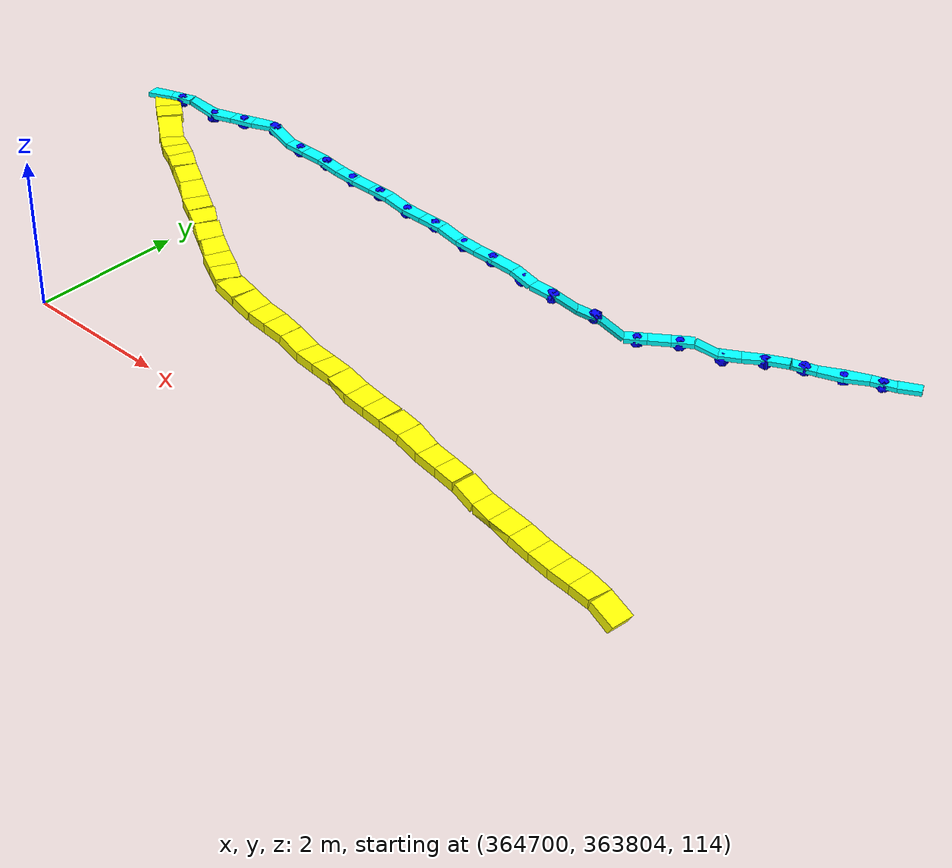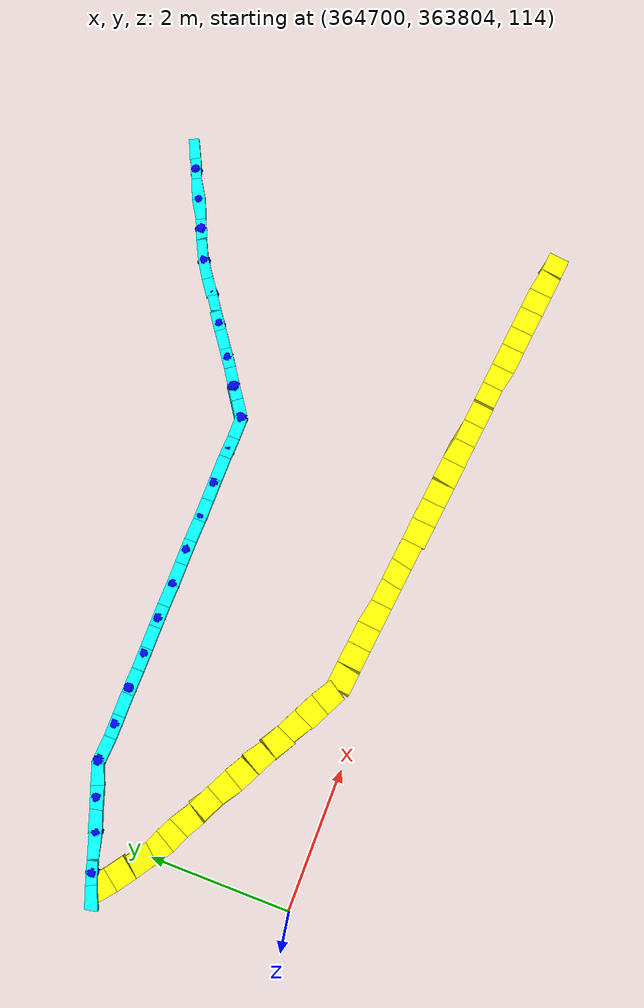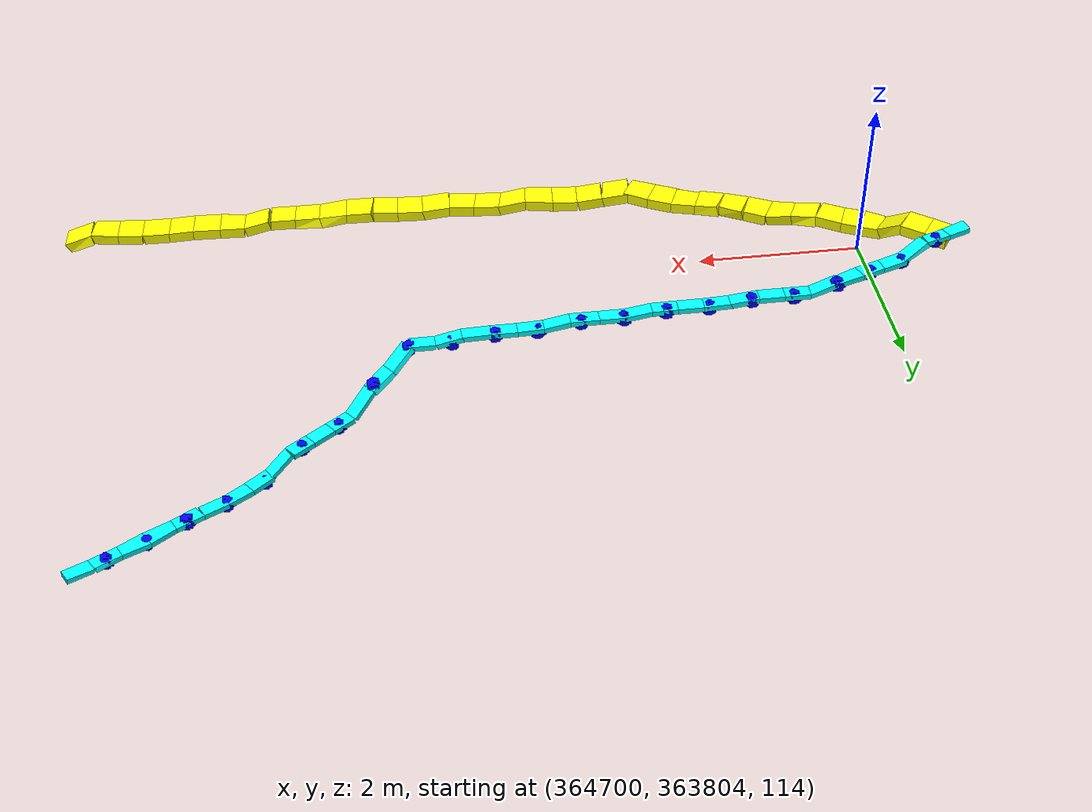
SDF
<sdf version="1.5">
 <world name="default">
  <include><uri>model://sun</uri></include>
  <model name="road_segment_163">
   <static>true</static>
   <pose>364699.94 363806.24 115.87 0 -0.0 -0.6747409422590451</pose>
   <link name="link">
    <collision name="collision">
     <geometry><box><size>0.2561249694449526 0.3 0.12</size></box></geometry>
     <surface><friction><ode><mu>0.02</mu><mu2>0.02</mu2></ode></friction></surface>
    </collision>
    <visual name="visual">
     <geometry><box><size>0.2561249694449526 0.3 0.12</size></box></geometry>
     <material><ambient>1 1 0 1</ambient><diffuse>1 1 0 1</diffuse><emissive>1 1 0 1</emissive></material>
    </visual>
   </link>
  </model>
  <model name="road_segment_164">
   <static>true</static>
   <pose>364700.14 363806.08 115.87400000024796 0 -0.031224602607258636 -0.6747409422945376</pose>
   <link name="link">
    <collision name="collision">
     <geometry><box><size>0.25624987809367294 0.3 0.12</size></box></geometry>
     <surface><friction><ode><mu>0.02</mu><mu2>0.02</mu2></ode></friction></surface>
    </collision>
    <visual name="visual">
     <geometry><box><size>0.25624987809367294 0.3 0.12</size></box></geometry>
     <material><ambient>1 1 0 1</ambient><diffuse>1 1 0 1</diffuse><emissive>1 1 0 1</emissive></material>
    </visual>
   </link>
  </model>
  <model name="road_segment_165">
   <static>true</static>
   <pose>364700.33999999997 363805.92000000004 115.7990000006627 0 0.5527434993754079 -0.6747409421170752</pose>
   <link name="link">
    <collision name="collision">
     <geometry><box><size>0.3009385317487049 0.3 0.12</size></box></geometry>
     <surface><friction><ode><mu>0.02</mu><mu2>0.02</mu2></ode></friction></surface>
    </collision>
    <visual name="visual">
     <geometry><box><size>0.3009385317487049 0.3 0.12</size></box></geometry>
     <material><ambient>1 1 0 1</ambient><diffuse>1 1 0 1</diffuse><emissive>1 1 0 1</emissive></material>
    </visual>
   </link>
  </model>
  <model name="road_segment_166">
   <static>true</static>
   <pose>364700.54000000004 363805.79000000004 115.72000000041473 0 3.7094541680606254e-09 -0.4636476091172214</pose>
   <link name="link">
    <collision name="collision">
     <geometry><box><size>0.22360679777601022 0.3 0.12</size></box></geometry>
     <surface><friction><ode><mu>0.02</mu><mu2>0.02</mu2></ode></friction></surface>
    </collision>
    <visual name="visual">
     <geometry><box><size>0.22360679777601022 0.3 0.12</size></box></geometry>
     <material><ambient>1 1 0 1</ambient><diffuse>1 1 0 1</diffuse><emissive>1 1 0 1</emissive></material>
    </visual>
   </link>
  </model>
  <model name="road_segment_167">
   <static>true</static>
   <pose>364700.74 363805.69 115.72 0 -0.0 -0.46364760888439077</pose>
   <link name="link">
    <collision name="collision">
     <geometry><box><size>0.22360679774997896 0.3 0.12</size></box></geometry>
     <surface><friction><ode><mu>0.1</mu><mu2>0.1</mu2></ode></friction></surface>
    </collision>
    <visual name="visual">
     <geometry><box><size>0.22360679774997896 0.3 0.12</size></box></geometry>
     <material><ambient>1 1 0 1</ambient><diffuse>1 1 0 1</diffuse><emissive>1 1 0 1</emissive></material>
    </visual>
   </link>
  </model>
  <model name="road_segment_168">
   <static>true</static>
   <pose>364700.96222222224 363805.57333333336 115.71999999999998 0 5.103673544427894e-14 -0.49934672179691614</pose>
   <link name="link">
    <collision name="collision">
     <geometry><box><size>0.2784436463558132 0.3 0.12</size></box></geometry>
     <surface><friction><ode><mu>0.02</mu><mu2>0.02</mu2></ode></friction></surface>
    </collision>
    <visual name="visual">
     <geometry><box><size>0.2784436463558132 0.3 0.12</size></box></geometry>
     <material><ambient>1 1 0 1</ambient><diffuse>1 1 0 1</diffuse><emissive>1 1 0 1</emissive></material>
    </visual>
   </link>
  </model>
  <model name="road_segment_169">
   <static>true</static>
   <pose>364701.20666666667 363805.44 115.69111111141589 0 0.20459906853487628 -0.49934672161339516</pose>
   <link name="link">
    <collision name="collision">
     <geometry><box><size>0.28437499136684896 0.3 0.12</size></box></geometry>
     <surface><friction><ode><mu>0.02</mu><mu2>0.02</mu2></ode></friction></surface>
    </collision>
    <visual name="visual">
     <geometry><box><size>0.28437499136684896 0.3 0.12</size></box></geometry>
     <material><ambient>1 1 0 1</ambient><diffuse>1 1 0 1</diffuse><emissive>1 1 0 1</emissive></material>
    </visual>
   </link>
  </model>
  <model name="road_segment_170">
   <static>true</static>
   <pose>364701.4511111111 363805.30666666664 115.62611111141591 0 0.25378557963269954 -0.4993467216968138</pose>
   <link name="link">
    <collision name="collision">
     <geometry><box><size>0.2876576327774809 0.3 0.12</size></box></geometry>
     <surface><friction><ode><mu>0.02</mu><mu2>0.02</mu2></ode></friction></surface>
    </collision>
    <visual name="visual">
     <geometry><box><size>0.2876576327774809 0.3 0.12</size></box></geometry>
     <material><ambient>1 1 0 1</ambient><diffuse>1 1 0 1</diffuse><emissive>1 1 0 1</emissive></material>
    </visual>
   </link>
  </model>
  <model name="road_segment_171">
   <static>true</static>
   <pose>364701.6955555556 363805.17333333334 115.59 0 -0.0 -0.49934672161339516</pose>
   <link name="link">
    <collision name="collision">
     <geometry><box><size>0.27844364632794033 0.3 0.12</size></box></geometry>
     <surface><friction><ode><mu>0.02</mu><mu2>0.02</mu2></ode></friction></surface>
    </collision>
    <visual name="visual">
     <geometry><box><size>0.27844364632794033 0.3 0.12</size></box></geometry>
     <material><ambient>1 1 0 1</ambient><diffuse>1 1 0 1</diffuse><emissive>1 1 0 1</emissive></material>
    </visual>
   </link>
  </model>
  <model name="road_segment_172">
   <static>true</static>
   <pose>364701.94 363805.04000000004 115.58166666636352 0 0.059785187089526556 -0.49934672179691614</pose>
   <link name="link">
    <collision name="collision">
     <geometry><box><size>0.2789420047140796 0.3 0.12</size></box></geometry>
     <surface><friction><ode><mu>0.02</mu><mu2>0.02</mu2></ode></friction></surface>
    </collision>
    <visual name="visual">
     <geometry><box><size>0.2789420047140796 0.3 0.12</size></box></geometry>
     <material><ambient>1 1 0 1</ambient><diffuse>1 1 0 1</diffuse><emissive>1 1 0 1</emissive></material>
    </visual>
   </link>
  </model>
  <model name="road_segment_173">
   <static>true</static>
   <pose>364702.1844444444 363804.9066666667 115.54666666651485 0 0.18924868778680745 -0.49934672161339516</pose>
   <link name="link">
    <collision name="collision">
     <geometry><box><size>0.2835053941777532 0.3 0.12</size></box></geometry>
     <surface><friction><ode><mu>0.02</mu><mu2>0.02</mu2></ode></friction></surface>
    </collision>
    <visual name="visual">
     <geometry><box><size>0.2835053941777532 0.3 0.12</size></box></geometry>
     <material><ambient>1 1 0 1</ambient><diffuse>1 1 0 1</diffuse><emissive>1 1 0 1</emissive></material>
    </visual>
   </link>
  </model>
  <model name="road_segment_174">
   <static>true</static>
   <pose>364702.4288888889 363804.7733333333 115.50000000015135 0 0.14267949443683417 -0.4993467216968138</pose>
   <link name="link">
    <collision name="collision">
     <geometry><box><size>0.2813020871742563 0.3 0.12</size></box></geometry>
     <surface><friction><ode><mu>0.02</mu><mu2>0.02</mu2></ode></friction></surface>
    </collision>
    <visual name="visual">
     <geometry><box><size>0.2813020871742563 0.3 0.12</size></box></geometry>
     <material><ambient>1 1 0 1</ambient><diffuse>1 1 0 1</diffuse><emissive>1 1 0 1</emissive></material>
    </visual>
   </link>
  </model>
  <model name="road_segment_175">
   <static>true</static>
   <pose>364702.67333333334 363804.64 115.48 0 -0.0 -0.49934672161339516</pose>
   <link name="link">
    <collision name="collision">
     <geometry><box><size>0.27844364632794033 0.3 0.12</size></box></geometry>
     <surface><friction><ode><mu>0.02</mu><mu2>0.02</mu2></ode></friction></surface>
    </collision>
    <visual name="visual">
     <geometry><box><size>0.27844364632794033 0.3 0.12</size></box></geometry>
     <material><ambient>1 1 0 1</ambient><diffuse>1 1 0 1</diffuse><emissive>1 1 0 1</emissive></material>
    </visual>
   </link>
  </model>
  <model name="road_segment_176">
   <static>true</static>
   <pose>364702.91777777777 363804.5066666667 115.48 0 -0.0 -0.49934672179691614</pose>
   <link name="link">
    <collision name="collision">
     <geometry><box><size>0.2784436463558132 0.3 0.12</size></box></geometry>
     <surface><friction><ode><mu>0.2</mu><mu2>0.2</mu2></ode></friction></surface>
    </collision>
    <visual name="visual">
     <geometry><box><size>0.2784436463558132 0.3 0.12</size></box></geometry>
     <material><ambient>1 1 0 1</ambient><diffuse>1 1 0 1</diffuse><emissive>1 1 0 1</emissive></material>
    </visual>
   </link>
  </model>
  <model name="road_segment_177">
   <static>true</static>
   <pose>364703.18782608694 363804.4226086957 115.45608695678494 0 0.15929551790723767 -0.11710874450974926</pose>
   <link name="link">
    <collision name="collision">
     <geometry><box><size>0.30150849466722524 0.3 0.12</size></box></geometry>
     <surface><friction><ode><mu>0.02</mu><mu2>0.02</mu2></ode></friction></surface>
    </collision>
    <visual name="visual">
     <geometry><box><size>0.30150849466722524 0.3 0.12</size></box></geometry>
     <material><ambient>1 1 0 1</ambient><diffuse>1 1 0 1</diffuse><emissive>1 1 0 1</emissive></material>
    </visual>
   </link>
  </model>
  <model name="road_segment_178">
   <static>true</static>
   <pose>364703.48347826087 363804.38782608695 115.40608695678493 0 0.1734997467044486 -0.11710874470394035</pose>
   <link name="link">
    <collision name="collision">
     <geometry><box><size>0.30222864701169905 0.3 0.12</size></box></geometry>
     <surface><friction><ode><mu>0.02</mu><mu2>0.02</mu2></ode></friction></surface>
    </collision>
    <visual name="visual">
     <geometry><box><size>0.30222864701169905 0.3 0.12</size></box></geometry>
     <material><ambient>1 1 0 1</ambient><diffuse>1 1 0 1</diffuse><emissive>1 1 0 1</emissive></material>
    </visual>
   </link>
  </model>
  <model name="road_segment_179">
   <static>true</static>
   <pose>364703.77913043473 363804.3530434782 115.38000000000001 0 -4.773690233292233e-14 -0.11710874453259527</pose>
   <link name="link">
    <collision name="collision">
     <geometry><box><size>0.297691178537182 0.3 0.12</size></box></geometry>
     <surface><friction><ode><mu>0.02</mu><mu2>0.02</mu2></ode></friction></surface>
    </collision>
    <visual name="visual">
     <geometry><box><size>0.297691178537182 0.3 0.12</size></box></geometry>
     <material><ambient>1 1 0 1</ambient><diffuse>1 1 0 1</diffuse><emissive>1 1 0 1</emissive></material>
    </visual>
   </link>
  </model>
  <model name="road_segment_180">
   <static>true</static>
   <pose>364704.07478260866 363804.3182608696 115.38 0 9.54738046473045e-14 -0.11710874450974926</pose>
   <link name="link">
    <collision name="collision">
     <geometry><box><size>0.297691178594991 0.3 0.12</size></box></geometry>
     <surface><friction><ode><mu>0.02</mu><mu2>0.02</mu2></ode></friction></surface>
    </collision>
    <visual name="visual">
     <geometry><box><size>0.297691178594991 0.3 0.12</size></box></geometry>
     <material><ambient>1 1 0 1</ambient><diffuse>1 1 0 1</diffuse><emissive>1 1 0 1</emissive></material>
    </visual>
   </link>
  </model>
  <model name="road_segment_181">
   <static>true</static>
   <pose>364704.3704347826 363804.28347826086 115.345 0 0.2309474823678924 -0.11710874450974926</pose>
   <link name="link">
    <collision name="collision">
     <geometry><box><size>0.3058104606014482 0.3 0.12</size></box></geometry>
     <surface><friction><ode><mu>0.02</mu><mu2>0.02</mu2></ode></friction></surface>
    </collision>
    <visual name="visual">
     <geometry><box><size>0.3058104606014482 0.3 0.12</size></box></geometry>
     <material><ambient>1 1 0 1</ambient><diffuse>1 1 0 1</diffuse><emissive>1 1 0 1</emissive></material>
    </visual>
   </link>
  </model>
  <model name="road_segment_182">
   <static>true</static>
   <pose>364704.6660869565 363804.2486956522 115.31000000000002 0 4.773690232256166e-14 -0.11710874470394035</pose>
   <link name="link">
    <collision name="collision">
     <geometry><box><size>0.297691178601792 0.3 0.12</size></box></geometry>
     <surface><friction><ode><mu>0.02</mu><mu2>0.02</mu2></ode></friction></surface>
    </collision>
    <visual name="visual">
     <geometry><box><size>0.297691178601792 0.3 0.12</size></box></geometry>
     <material><ambient>1 1 0 1</ambient><diffuse>1 1 0 1</diffuse><emissive>1 1 0 1</emissive></material>
    </visual>
   </link>
  </model>
  <model name="road_segment_183">
   <static>true</static>
   <pose>364704.96173913043 363804.2139130435 115.31 0 -0.0 -0.11710874450974926</pose>
   <link name="link">
    <collision name="collision">
     <geometry><box><size>0.297691178594991 0.3 0.12</size></box></geometry>
     <surface><friction><ode><mu>0.02</mu><mu2>0.02</mu2></ode></friction></surface>
    </collision>
    <visual name="visual">
     <geometry><box><size>0.297691178594991 0.3 0.12</size></box></geometry>
     <material><ambient>1 1 0 1</ambient><diffuse>1 1 0 1</diffuse><emissive>1 1 0 1</emissive></material>
    </visual>
   </link>
  </model>
  <model name="road_segment_184">
   <static>true</static>
   <pose>364705.25739130436 363804.17913043476 115.28521739147631 0 0.16498532049320544 -0.11710874450974926</pose>
   <link name="link">
    <collision name="collision">
     <geometry><box><size>0.30178924525938305 0.3 0.12</size></box></geometry>
     <surface><friction><ode><mu>0.02</mu><mu2>0.02</mu2></ode></friction></surface>
    </collision>
    <visual name="visual">
     <geometry><box><size>0.30178924525938305 0.3 0.12</size></box></geometry>
     <material><ambient>1 1 0 1</ambient><diffuse>1 1 0 1</diffuse><emissive>1 1 0 1</emissive></material>
    </visual>
   </link>
  </model>
  <model name="road_segment_185">
   <static>true</static>
   <pose>364705.5530434783 363804.14434782614 115.25521739147632 0 0.03503803008240777 -0.11710874453259527</pose>
   <link name="link">
    <collision name="collision">
     <geometry><box><size>0.29787400436111333 0.3 0.12</size></box></geometry>
     <surface><friction><ode><mu>0.02</mu><mu2>0.02</mu2></ode></friction></surface>
    </collision>
    <visual name="visual">
     <geometry><box><size>0.29787400436111333 0.3 0.12</size></box></geometry>
     <material><ambient>1 1 0 1</ambient><diffuse>1 1 0 1</diffuse><emissive>1 1 0 1</emissive></material>
    </visual>
   </link>
  </model>
  <model name="road_segment_186">
   <static>true</static>
   <pose>364705.84869565215 363804.1095652174 115.25000000000001 0 -0.0 -0.11710874470394035</pose>
   <link name="link">
    <collision name="collision">
     <geometry><box><size>0.297691178601792 0.3 0.12</size></box></geometry>
     <surface><friction><ode><mu>0.02</mu><mu2>0.02</mu2></ode></friction></surface>
    </collision>
    <visual name="visual">
     <geometry><box><size>0.297691178601792 0.3 0.12</size></box></geometry>
     <material><ambient>1 1 0 1</ambient><diffuse>1 1 0 1</diffuse><emissive>1 1 0 1</emissive></material>
    </visual>
   </link>
  </model>
  <model name="road_segment_187">
   <static>true</static>
   <pose>364706.1443478261 363804.07478260866 115.24086956543087 0 0.061264888014374914 -0.11710874450974926</pose>
   <link name="link">
    <collision name="collision">
     <geometry><box><size>0.29825072867465136 0.3 0.12</size></box></geometry>
     <surface><friction><ode><mu>0.02</mu><mu2>0.02</mu2></ode></friction></surface>
    </collision>
    <visual name="visual">
     <geometry><box><size>0.29825072867465136 0.3 0.12</size></box></geometry>
     <material><ambient>1 1 0 1</ambient><diffuse>1 1 0 1</diffuse><emissive>1 1 0 1</emissive></material>
    </visual>
   </link>
  </model>
  <model name="road_segment_188">
   <static>true</static>
   <pose>364706.44 363804.04000000004 115.20108695608936 0 0.20309352094061958 -0.11710874450974926</pose>
   <link name="link">
    <collision name="collision">
     <geometry><box><size>0.30393792308032025 0.3 0.12</size></box></geometry>
     <surface><friction><ode><mu>0.02</mu><mu2>0.02</mu2></ode></friction></surface>
    </collision>
    <visual name="visual">
     <geometry><box><size>0.30393792308032025 0.3 0.12</size></box></geometry>
     <material><ambient>1 1 0 1</ambient><diffuse>1 1 0 1</diffuse><emissive>1 1 0 1</emissive></material>
    </visual>
   </link>
  </model>
  <model name="road_segment_189">
   <static>true</static>
   <pose>364706.7356521739 363804.0052173913 115.16086956393055 0 0.06417444295649297 -0.11710874450974926</pose>
   <link name="link">
    <collision name="collision">
     <geometry><box><size>0.29830523184797497 0.3 0.12</size></box></geometry>
     <surface><friction><ode><mu>0.02</mu><mu2>0.02</mu2></ode></friction></surface>
    </collision>
    <visual name="visual">
     <geometry><box><size>0.29830523184797497 0.3 0.12</size></box></geometry>
     <material><ambient>1 1 0 1</ambient><diffuse>1 1 0 1</diffuse><emissive>1 1 0 1</emissive></material>
    </visual>
   </link>
  </model>
  <model name="road_segment_190">
   <static>true</static>
   <pose>364707.03130434785 363803.9704347826 115.14173912914167 0 0.06417444306209223 -0.11710874470394035</pose>
   <link name="link">
    <collision name="collision">
     <geometry><box><size>0.2983052318568143 0.3 0.12</size></box></geometry>
     <surface><friction><ode><mu>0.02</mu><mu2>0.02</mu2></ode></friction></surface>
    </collision>
    <visual name="visual">
     <geometry><box><size>0.2983052318568143 0.3 0.12</size></box></geometry>
     <material><ambient>1 1 0 1</ambient><diffuse>1 1 0 1</diffuse><emissive>1 1 0 1</emissive></material>
    </visual>
   </link>
  </model>
  <model name="road_segment_191">
   <static>true</static>
   <pose>364707.3269565217 363803.93565217394 115.08673912931194 0 0.2962642707435881 -0.11710874453259527</pose>
   <link name="link">
    <collision name="collision">
     <geometry><box><size>0.3112512097899672 0.3 0.12</size></box></geometry>
     <surface><friction><ode><mu>0.02</mu><mu2>0.02</mu2></ode></friction></surface>
    </collision>
    <visual name="visual">
     <geometry><box><size>0.3112512097899672 0.3 0.12</size></box></geometry>
     <material><ambient>1 1 0 1</ambient><diffuse>1 1 0 1</diffuse><emissive>1 1 0 1</emissive></material>
    </visual>
   </link>
  </model>
  <model name="road_segment_192">
   <static>true</static>
   <pose>364707.62260869564 363803.9008695652 115.03434782514906 0 0.0467025146793809 -0.11710874450974926</pose>
   <link name="link">
    <collision name="collision">
     <geometry><box><size>0.29801612471795097 0.3 0.12</size></box></geometry>
     <surface><friction><ode><mu>0.02</mu><mu2>0.02</mu2></ode></friction></surface>
    </collision>
    <visual name="visual">
     <geometry><box><size>0.29801612471795097 0.3 0.12</size></box></geometry>
     <material><ambient>1 1 0 1</ambient><diffuse>1 1 0 1</diffuse><emissive>1 1 0 1</emissive></material>
    </visual>
   </link>
  </model>
  <model name="road_segment_193">
   <static>true</static>
   <pose>364707.91826086957 363803.8660869566 115.02043478167788 0 0.04670251467947616 -0.11710874450974926</pose>
   <link name="link">
    <collision name="collision">
     <geometry><box><size>0.2980161247179523 0.3 0.12</size></box></geometry>
     <surface><friction><ode><mu>0.02</mu><mu2>0.02</mu2></ode></friction></surface>
    </collision>
    <visual name="visual">
     <geometry><box><size>0.2980161247179523 0.3 0.12</size></box></geometry>
     <material><ambient>1 1 0 1</ambient><diffuse>1 1 0 1</diffuse><emissive>1 1 0 1</emissive></material>
    </visual>
   </link>
  </model>
  <model name="road_segment_194">
   <static>true</static>
   <pose>364708.2139130435 363803.83130434784 114.99652173883098 0 0.11343120250657349 -0.11710874470394035</pose>
   <link name="link">
    <collision name="collision">
     <geometry><box><size>0.299616642144787 0.3 0.12</size></box></geometry>
     <surface><friction><ode><mu>0.02</mu><mu2>0.02</mu2></ode></friction></surface>
    </collision>
    <visual name="visual">
     <geometry><box><size>0.299616642144787 0.3 0.12</size></box></geometry>
     <material><ambient>1 1 0 1</ambient><diffuse>1 1 0 1</diffuse><emissive>1 1 0 1</emissive></material>
    </visual>
   </link>
  </model>
  <model name="road_segment_195">
   <static>true</static>
   <pose>364708.5095652174 363803.7965217391 114.96978260885983 0 0.06562881604022686 -0.11710874450974926</pose>
   <link name="link">
    <collision name="collision">
     <geometry><box><size>0.2983334301711644 0.3 0.12</size></box></geometry>
     <surface><friction><ode><mu>0.02</mu><mu2>0.02</mu2></ode></friction></surface>
    </collision>
    <visual name="visual">
     <geometry><box><size>0.2983334301711644 0.3 0.12</size></box></geometry>
     <material><ambient>1 1 0 1</ambient><diffuse>1 1 0 1</diffuse><emissive>1 1 0 1</emissive></material>
    </visual>
   </link>
  </model>
  <model name="road_segment_196">
   <static>true</static>
   <pose>364708.80521739135 363803.7617391305 114.96 0 -0.0 -0.11710874450974926</pose>
   <link name="link">
    <collision name="collision">
     <geometry><box><size>0.297691178594991 0.3 0.12</size></box></geometry>
     <surface><friction><ode><mu>0.02</mu><mu2>0.02</mu2></ode></friction></surface>
    </collision>
    <visual name="visual">
     <geometry><box><size>0.297691178594991 0.3 0.12</size></box></geometry>
     <material><ambient>1 1 0 1</ambient><diffuse>1 1 0 1</diffuse><emissive>1 1 0 1</emissive></material>
    </visual>
   </link>
  </model>
  <model name="road_segment_197">
   <static>true</static>
   <pose>364709.10086956527 363803.72695652174 114.9571739134942 0 0.018984418662639092 -0.11710874453259527</pose>
   <link name="link">
    <collision name="collision">
     <geometry><box><size>0.29774483175801597 0.3 0.12</size></box></geometry>
     <surface><friction><ode><mu>0.02</mu><mu2>0.02</mu2></ode></friction></surface>
    </collision>
    <visual name="visual">
     <geometry><box><size>0.29774483175801597 0.3 0.12</size></box></geometry>
     <material><ambient>1 1 0 1</ambient><diffuse>1 1 0 1</diffuse><emissive>1 1 0 1</emissive></material>
    </visual>
   </link>
  </model>
  <model name="road_segment_198">
   <static>true</static>
   <pose>364709.39652173914 363803.69217391306 114.8921739134942 0 0.3956776243198741 -0.11710874470394035</pose>
   <link name="link">
    <collision name="collision">
     <geometry><box><size>0.3226180712453413 0.3 0.12</size></box></geometry>
     <surface><friction><ode><mu>0.02</mu><mu2>0.02</mu2></ode></friction></surface>
    </collision>
    <visual name="visual">
     <geometry><box><size>0.3226180712453413 0.3 0.12</size></box></geometry>
     <material><ambient>1 1 0 1</ambient><diffuse>1 1 0 1</diffuse><emissive>1 1 0 1</emissive></material>
    </visual>
   </link>
  </model>
  <model name="normal_astar_segment_136">
   <static>true</static>
   <pose>364699.7733333333 363806.29 115.94 0 -0.0 0.35877067019880937</pose>
   <link name="link">
    <visual name="visual">
     <geometry><box><size>0.28480012483210904 0.15 0.06</size></box></geometry>
     <material><ambient>0 1 1 1</ambient><diffuse>0 1 1 1</diffuse><emissive>0 1 1 1</emissive></material>
    </visual>
   </link>
  </model>
  <model name="normal_astar_segment_137">
   <static>true</static>
   <pose>364700.04000000004 363806.39 115.94000000000001 0 -4.9897642153631617e-14 0.358770670390177</pose>
   <link name="link">
    <visual name="visual">
     <geometry><box><size>0.28480012485254713 0.15 0.06</size></box></geometry>
     <material><ambient>0 1 1 1</ambient><diffuse>0 1 1 1</diffuse><emissive>0 1 1 1</emissive></material>
    </visual>
   </link>
  </model>
  <model name="normal_astar_segment_138">
   <static>true</static>
   <pose>364700.30666666664 363806.49 115.87500000028376 0 0.4282134512243534 0.358770670390177</pose>
   <link name="link">
    <visual name="visual">
     <geometry><box><size>0.31306726269042606 0.15 0.06</size></box></geometry>
     <material><ambient>0 1 1 1</ambient><diffuse>0 1 1 1</diffuse><emissive>0 1 1 1</emissive></material>
    </visual>
   </link>
  </model>
  <model name="normal_astar_segment_139">
   <static>true</static>
   <pose>364700.57333333336 363806.59 115.81000000028375 0 1.992712237190435e-09 0.35877067019880937</pose>
   <link name="link">
    <visual name="visual">
     <geometry><box><size>0.28480012483210904 0.15 0.06</size></box></geometry>
     <material><ambient>0 1 1 1</ambient><diffuse>0 1 1 1</diffuse><emissive>0 1 1 1</emissive></material>
    </visual>
   </link>
  </model>
  <model name="normal_astar_segment_140">
   <static>true</static>
   <pose>364700.83999999997 363806.69 115.80999999999999 0 -0.0 0.35877067019880937</pose>
   <link name="link">
    <visual name="visual">
     <geometry><box><size>0.28480012483210904 0.15 0.06</size></box></geometry>
     <material><ambient>0 1 1 1</ambient><diffuse>0 1 1 1</diffuse><emissive>0 1 1 1</emissive></material>
    </visual>
   </link>
  </model>
  <model name="normal_astar_segment_141">
   <static>true</static>
   <pose>364701.1066666667 363806.79000000004 115.80999999999999 0 -0.0 0.358770670390177</pose>
   <link name="link">
    <visual name="visual">
     <geometry><box><size>0.28480012485254713 0.15 0.06</size></box></geometry>
     <material><ambient>0 1 1 1</ambient><diffuse>0 1 1 1</diffuse><emissive>0 1 1 1</emissive></material>
    </visual>
   </link>
  </model>
  <model name="normal_astar_segment_142">
   <static>true</static>
   <pose>364701.38375 363806.84 115.74999999999999 0 0.3954084036007341 0.0</pose>
   <link name="link">
    <visual name="visual">
     <geometry><box><size>0.31153852087119166 0.15 0.06</size></box></geometry>
     <material><ambient>0 1 1 1</ambient><diffuse>0 1 1 1</diffuse><emissive>0 1 1 1</emissive></material>
    </visual>
   </link>
  </model>
  <model name="normal_astar_segment_143">
   <static>true</static>
   <pose>364701.67125 363806.84 115.69 0 -0.0 0.0</pose>
   <link name="link">
    <visual name="visual">
     <geometry><box><size>0.2875000000349246 0.15 0.06</size></box></geometry>
     <material><ambient>0 1 1 1</ambient><diffuse>0 1 1 1</diffuse><emissive>0 1 1 1</emissive></material>
    </visual>
   </link>
  </model>
  <model name="normal_astar_segment_144">
   <static>true</static>
   <pose>364701.95875 363806.84 115.69 0 -0.0 0.0</pose>
   <link name="link">
    <visual name="visual">
     <geometry><box><size>0.28749999997671694 0.15 0.06</size></box></geometry>
     <material><ambient>0 1 1 1</ambient><diffuse>0 1 1 1</diffuse><emissive>0 1 1 1</emissive></material>
    </visual>
   </link>
  </model>
  <model name="normal_astar_segment_145">
   <static>true</static>
   <pose>364702.24624999997 363806.84 115.67125000012187 0 0.12970253630673695 0.0</pose>
   <link name="link">
    <visual name="visual">
     <geometry><box><size>0.28993533762168666 0.15 0.06</size></box></geometry>
     <material><ambient>0 1 1 1</ambient><diffuse>0 1 1 1</diffuse><emissive>0 1 1 1</emissive></material>
    </visual>
   </link>
  </model>
  <model name="normal_astar_segment_146">
   <static>true</static>
   <pose>364702.53375 363806.84 115.64625000012187 0 0.043450896241262735 0.0</pose>
   <link name="link">
    <visual name="visual">
     <geometry><box><size>0.28777161081786007 0.15 0.06</size></box></geometry>
     <material><ambient>0 1 1 1</ambient><diffuse>0 1 1 1</diffuse><emissive>0 1 1 1</emissive></material>
    </visual>
   </link>
  </model>
  <model name="normal_astar_segment_147">
   <static>true</static>
   <pose>364702.82125000004 363806.84 115.63999999999999 0 -0.0 0.0</pose>
   <link name="link">
    <visual name="visual">
     <geometry><box><size>0.2875000000349246 0.15 0.06</size></box></geometry>
     <material><ambient>0 1 1 1</ambient><diffuse>0 1 1 1</diffuse><emissive>0 1 1 1</emissive></material>
    </visual>
   </link>
  </model>
  <model name="normal_astar_segment_148">
   <static>true</static>
   <pose>364703.10875 363806.84 115.6384375001296 0 0.010869136276660914 0.0</pose>
   <link name="link">
    <visual name="visual">
     <geometry><box><size>0.2875169831679377 0.15 0.06</size></box></geometry>
     <material><ambient>0 1 1 1</ambient><diffuse>0 1 1 1</diffuse><emissive>0 1 1 1</emissive></material>
    </visual>
   </link>
  </model>
  <model name="normal_astar_segment_149">
   <static>true</static>
   <pose>364703.39625 363806.84 115.61343750012959 0 0.16162135604195954 0.0</pose>
   <link name="link">
    <visual name="visual">
     <geometry><box><size>0.29129626786037305 0.15 0.06</size></box></geometry>
     <material><ambient>0 1 1 1</ambient><diffuse>0 1 1 1</diffuse><emissive>0 1 1 1</emissive></material>
    </visual>
   </link>
  </model>
  <model name="normal_astar_segment_150">
   <static>true</static>
   <pose>364703.68375 363806.84 115.58999999999999 0 -0.0 0.0</pose>
   <link name="link">
    <visual name="visual">
     <geometry><box><size>0.28749999997671694 0.15 0.06</size></box></geometry>
     <material><ambient>0 1 1 1</ambient><diffuse>0 1 1 1</diffuse><emissive>0 1 1 1</emissive></material>
    </visual>
   </link>
  </model>
  <model name="normal_astar_segment_151">
   <static>true</static>
   <pose>364703.97125 363806.84 115.58999999999999 0 -0.0 0.0</pose>
   <link name="link">
    <visual name="visual">
     <geometry><box><size>0.28749999997671694 0.15 0.06</size></box></geometry>
     <material><ambient>0 1 1 1</ambient><diffuse>0 1 1 1</diffuse><emissive>0 1 1 1</emissive></material>
    </visual>
   </link>
  </model>
  <model name="normal_astar_segment_152">
   <static>true</static>
   <pose>364704.25875000004 363806.84 115.56156250018907 0 0.19530438636870592 0.0</pose>
   <link name="link">
    <visual name="visual">
     <geometry><box><size>0.29307169020918067 0.15 0.06</size></box></geometry>
     <material><ambient>0 1 1 1</ambient><diffuse>0 1 1 1</diffuse><emissive>0 1 1 1</emissive></material>
    </visual>
   </link>
  </model>
  <model name="normal_astar_segment_153">
   <static>true</static>
   <pose>364704.54625 363806.84 115.52656250018907 0 0.04562049994444006 0.0</pose>
   <link name="link">
    <visual name="visual">
     <geometry><box><size>0.28779943645104444 0.15 0.06</size></box></geometry>
     <material><ambient>0 1 1 1</ambient><diffuse>0 1 1 1</diffuse><emissive>0 1 1 1</emissive></material>
    </visual>
   </link>
  </model>
  <model name="normal_astar_segment_154">
   <static>true</static>
   <pose>364704.83375 363806.84 115.52 0 -0.0 0.0</pose>
   <link name="link">
    <visual name="visual">
     <geometry><box><size>0.2875000000349246 0.15 0.06</size></box></geometry>
     <material><ambient>0 1 1 1</ambient><diffuse>0 1 1 1</diffuse><emissive>0 1 1 1</emissive></material>
    </visual>
   </link>
  </model>
  <model name="normal_astar_segment_155">
   <static>true</static>
   <pose>364705.12125 363806.84 115.51500000022845 0 0.0347685902714921 0.0</pose>
   <link name="link">
    <visual name="visual">
     <geometry><box><size>0.2876738604348223 0.15 0.06</size></box></geometry>
     <material><ambient>0 1 1 1</ambient><diffuse>0 1 1 1</diffuse><emissive>0 1 1 1</emissive></material>
    </visual>
   </link>
  </model>
  <model name="normal_astar_segment_156">
   <static>true</static>
   <pose>364705.40875000006 363806.84 115.47500000022846 0 0.2388312010571562 0.0</pose>
   <link name="link">
    <visual name="visual">
     <geometry><box><size>0.2958990538748877 0.15 0.06</size></box></geometry>
     <material><ambient>0 1 1 1</ambient><diffuse>0 1 1 1</diffuse><emissive>0 1 1 1</emissive></material>
    </visual>
   </link>
  </model>
  <model name="normal_astar_segment_157">
   <static>true</static>
   <pose>364705.69625000004 363806.84 115.43999999999998 0 -4.942905988296648e-14 0.0</pose>
   <link name="link">
    <visual name="visual">
     <geometry><box><size>0.28749999997671694 0.15 0.06</size></box></geometry>
     <material><ambient>0 1 1 1</ambient><diffuse>0 1 1 1</diffuse><emissive>0 1 1 1</emissive></material>
    </visual>
   </link>
  </model>
  <model name="normal_astar_segment_158">
   <static>true</static>
   <pose>364705.95111111115 363806.91777777777 115.3505555570096 0 0.5830118769808117 0.6107259642837316</pose>
   <link name="link">
    <visual name="visual">
     <geometry><box><size>0.324933039944066 0.15 0.06</size></box></geometry>
     <material><ambient>0 1 1 1</ambient><diffuse>0 1 1 1</diffuse><emissive>0 1 1 1</emissive></material>
    </visual>
   </link>
  </model>
  <model name="normal_astar_segment_159">
   <static>true</static>
   <pose>364706.17333333334 363807.07333333336 115.20444444673603 0 0.3957634643799805 0.6107259644067881</pose>
   <link name="link">
    <visual name="visual">
     <geometry><box><size>0.29398076742859836 0.15 0.06</size></box></geometry>
     <material><ambient>0 1 1 1</ambient><diffuse>0 1 1 1</diffuse><emissive>0 1 1 1</emissive></material>
    </visual>
   </link>
  </model>
  <model name="normal_astar_segment_160">
   <static>true</static>
   <pose>364706.3955555556 363807.2288888889 115.03888888972642 0 0.6764746837654368 0.6107259644595266</pose>
   <link name="link">
    <visual name="visual">
     <geometry><box><size>0.3478611909388196 0.15 0.06</size></box></geometry>
     <material><ambient>0 1 1 1</ambient><diffuse>0 1 1 1</diffuse><emissive>0 1 1 1</emissive></material>
    </visual>
   </link>
  </model>
  <model name="normal_astar_segment_161">
   <static>true</static>
   <pose>364706.61777777784 363807.38444444444 114.92999999999999 0 -0.0 0.6107259644067881</pose>
   <link name="link">
    <visual name="visual">
     <geometry><box><size>0.2712567914246139 0.15 0.06</size></box></geometry>
     <material><ambient>0 1 1 1</ambient><diffuse>0 1 1 1</diffuse><emissive>0 1 1 1</emissive></material>
    </visual>
   </link>
  </model>
  <model name="normal_astar_segment_162">
   <static>true</static>
   <pose>364706.84 363807.54000000004 114.92999999999999 0 -0.0 0.6107259642837316</pose>
   <link name="link">
    <visual name="visual">
     <geometry><box><size>0.2712567914722995 0.15 0.06</size></box></geometry>
     <material><ambient>0 1 1 1</ambient><diffuse>0 1 1 1</diffuse><emissive>0 1 1 1</emissive></material>
    </visual>
   </link>
  </model>
  <model name="normal_astar_segment_163">
   <static>true</static>
   <pose>364707.0622222222 363807.6955555555 114.92999999999999 0 -0.0 0.6107259644067881</pose>
   <link name="link">
    <visual name="visual">
     <geometry><box><size>0.2712567914246139 0.15 0.06</size></box></geometry>
     <material><ambient>0 1 1 1</ambient><diffuse>0 1 1 1</diffuse><emissive>0 1 1 1</emissive></material>
    </visual>
   </link>
  </model>
  <model name="normal_astar_segment_164">
   <static>true</static>
   <pose>364707.28444444446 363807.8511111111 114.86358024735381 0 0.455388737902457 0.6107259644595266</pose>
   <link name="link">
    <visual name="visual">
     <geometry><box><size>0.3020373836204326 0.15 0.06</size></box></geometry>
     <material><ambient>0 1 1 1</ambient><diffuse>0 1 1 1</diffuse><emissive>0 1 1 1</emissive></material>
    </visual>
   </link>
  </model>
  <model name="normal_astar_segment_165">
   <static>true</static>
   <pose>364707.5066666667 363808.0066666667 114.7885802473538 0 0.0631787178971163 0.6107259644067881</pose>
   <link name="link">
    <visual name="visual">
     <geometry><box><size>0.27179906083831007 0.15 0.06</size></box></geometry>
     <material><ambient>0 1 1 1</ambient><diffuse>0 1 1 1</diffuse><emissive>0 1 1 1</emissive></material>
    </visual>
   </link>
  </model>
  <model name="normal_astar_segment_166">
   <static>true</static>
   <pose>364707.7288888889 363808.1622222222 114.77999999999999 0 -0.0 0.6107259642837316</pose>
   <link name="link">
    <visual name="visual">
     <geometry><box><size>0.2712567914722995 0.15 0.06</size></box></geometry>
     <material><ambient>0 1 1 1</ambient><diffuse>0 1 1 1</diffuse><emissive>0 1 1 1</emissive></material>
    </visual>
   </link>
  </model>
  <model name="normal_astar_segment_167">
   <static>true</static>
   <pose>364707.9733333334 363808.30666666664 114.77999999999999 0 -0.0 0.4636476089134946</pose>
   <link name="link">
    <visual name="visual">
     <geometry><box><size>0.2981423969826178 0.15 0.06</size></box></geometry>
     <material><ambient>0 1 1 1</ambient><diffuse>0 1 1 1</diffuse><emissive>0 1 1 1</emissive></material>
    </visual>
   </link>
  </model>
  <model name="normal_astar_segment_168">
   <static>true</static>
   <pose>364708.24 363808.43999999994 114.7666666667986 0 0.08920534266691268 0.4636476090881176</pose>
   <link name="link">
    <visual name="visual">
     <geometry><box><size>0.29933259092704984 0.15 0.06</size></box></geometry>
     <material><ambient>0 1 1 1</ambient><diffuse>0 1 1 1</diffuse><emissive>0 1 1 1</emissive></material>
    </visual>
   </link>
  </model>
  <model name="normal_astar_segment_169">
   <static>true</static>
   <pose>364708.5066666667 363808.57333333336 114.74666666679859 0 0.04469158191833149 0.4636476090881176</pose>
   <link name="link">
    <visual name="visual">
     <geometry><box><size>0.2984403904951158 0.15 0.06</size></box></geometry>
     <material><ambient>0 1 1 1</ambient><diffuse>0 1 1 1</diffuse><emissive>0 1 1 1</emissive></material>
    </visual>
   </link>
  </model>
  <model name="normal_astar_segment_170">
   <static>true</static>
   <pose>364708.7733333333 363808.70666666667 114.74 0 -0.0 0.4636476089134946</pose>
   <link name="link">
    <visual name="visual">
     <geometry><box><size>0.2981423969826178 0.15 0.06</size></box></geometry>
     <material><ambient>0 1 1 1</ambient><diffuse>0 1 1 1</diffuse><emissive>0 1 1 1</emissive></material>
    </visual>
   </link>
  </model>
  <model name="normal_astar_segment_171">
   <static>true</static>
   <pose>364709.04000000004 363808.83999999997 114.73000000040453 0 0.06698168438033779 0.4636476089134946</pose>
   <link name="link">
    <visual name="visual">
     <geometry><box><size>0.2988124643420643 0.15 0.06</size></box></geometry>
     <material><ambient>0 1 1 1</ambient><diffuse>0 1 1 1</diffuse><emissive>0 1 1 1</emissive></material>
    </visual>
   </link>
  </model>
  <model name="normal_astar_segment_172">
   <static>true</static>
   <pose>364709.30666666664 363808.97333333327 114.72499999996215 0 -0.03352844458746301 0.4636476090881176</pose>
   <link name="link">
    <visual name="visual">
     <geometry><box><size>0.29831005490962925 0.15 0.06</size></box></geometry>
     <material><ambient>0 1 1 1</ambient><diffuse>0 1 1 1</diffuse><emissive>0 1 1 1</emissive></material>
    </visual>
   </link>
  </model>
  <model name="dijkstra_marker_87">
   <static>true</static>
   <pose>364700.04000000004 363806.39 115.91000000000003 0 0 0</pose>
   <link name="link">
    <visual name="visual">
     <geometry><sphere><radius>0.08</radius></sphere></geometry>
     <material><ambient>0 0 1 1</ambient><diffuse>0 0 1 1</diffuse><emissive>0 0 1 1</emissive></material>
    </visual>
   </link>
  </model>
  <model name="dijkstra_marker_88">
   <static>true</static>
   <pose>364700.44 363806.54000000004 115.78000000056753 0 0 0</pose>
   <link name="link">
    <visual name="visual">
     <geometry><sphere><radius>0.08</radius></sphere></geometry>
     <material><ambient>0 0 1 1</ambient><diffuse>0 0 1 1</diffuse><emissive>0 0 1 1</emissive></material>
    </visual>
   </link>
  </model>
  <model name="dijkstra_marker_89">
   <static>true</static>
   <pose>364700.83999999997 363806.69 115.78 0 0 0</pose>
   <link name="link">
    <visual name="visual">
     <geometry><sphere><radius>0.08</radius></sphere></geometry>
     <material><ambient>0 0 1 1</ambient><diffuse>0 0 1 1</diffuse><emissive>0 0 1 1</emissive></material>
    </visual>
   </link>
  </model>
  <model name="dijkstra_marker_90">
   <static>true</static>
   <pose>364701.24 363806.84 115.78 0 0 0</pose>
   <link name="link">
    <visual name="visual">
     <geometry><sphere><radius>0.08</radius></sphere></geometry>
     <material><ambient>0 0 1 1</ambient><diffuse>0 0 1 1</diffuse><emissive>0 0 1 1</emissive></material>
    </visual>
   </link>
  </model>
  <model name="dijkstra_marker_91">
   <static>true</static>
   <pose>364701.7 363806.84 115.66000000000003 0 0 0</pose>
   <link name="link">
    <visual name="visual">
     <geometry><sphere><radius>0.08</radius></sphere></geometry>
     <material><ambient>0 0 1 1</ambient><diffuse>0 0 1 1</diffuse><emissive>0 0 1 1</emissive></material>
    </visual>
   </link>
  </model>
  <model name="dijkstra_marker_92">
   <static>true</static>
   <pose>364702.16 363806.84 115.66000000000003 0 0 0</pose>
   <link name="link">
    <visual name="visual">
     <geometry><sphere><radius>0.08</radius></sphere></geometry>
     <material><ambient>0 0 1 1</ambient><diffuse>0 0 1 1</diffuse><emissive>0 0 1 1</emissive></material>
    </visual>
   </link>
  </model>
  <model name="dijkstra_marker_93">
   <static>true</static>
   <pose>364702.62 363806.84 115.61 0 0 0</pose>
   <link name="link">
    <visual name="visual">
     <geometry><sphere><radius>0.08</radius></sphere></geometry>
     <material><ambient>0 0 1 1</ambient><diffuse>0 0 1 1</diffuse><emissive>0 0 1 1</emissive></material>
    </visual>
   </link>
  </model>
  <model name="dijkstra_marker_94">
   <static>true</static>
   <pose>364703.08 363806.84 115.61 0 0 0</pose>
   <link name="link">
    <visual name="visual">
     <geometry><sphere><radius>0.08</radius></sphere></geometry>
     <material><ambient>0 0 1 1</ambient><diffuse>0 0 1 1</diffuse><emissive>0 0 1 1</emissive></material>
    </visual>
   </link>
  </model>
  <model name="dijkstra_marker_95">
   <static>true</static>
   <pose>364703.54000000004 363806.84 115.56 0 0 0</pose>
   <link name="link">
    <visual name="visual">
     <geometry><sphere><radius>0.08</radius></sphere></geometry>
     <material><ambient>0 0 1 1</ambient><diffuse>0 0 1 1</diffuse><emissive>0 0 1 1</emissive></material>
    </visual>
   </link>
  </model>
  <model name="dijkstra_marker_96">
   <static>true</static>
   <pose>364704.0 363806.84 115.56 0 0 0</pose>
   <link name="link">
    <visual name="visual">
     <geometry><sphere><radius>0.08</radius></sphere></geometry>
     <material><ambient>0 0 1 1</ambient><diffuse>0 0 1 1</diffuse><emissive>0 0 1 1</emissive></material>
    </visual>
   </link>
  </model>
  <model name="dijkstra_marker_97">
   <static>true</static>
   <pose>364704.46 363806.84 115.49000000000001 0 0 0</pose>
   <link name="link">
    <visual name="visual">
     <geometry><sphere><radius>0.08</radius></sphere></geometry>
     <material><ambient>0 0 1 1</ambient><diffuse>0 0 1 1</diffuse><emissive>0 0 1 1</emissive></material>
    </visual>
   </link>
  </model>
  <model name="dijkstra_marker_98">
   <static>true</static>
   <pose>364704.92000000004 363806.84 115.49000000000001 0 0 0</pose>
   <link name="link">
    <visual name="visual">
     <geometry><sphere><radius>0.08</radius></sphere></geometry>
     <material><ambient>0 0 1 1</ambient><diffuse>0 0 1 1</diffuse><emissive>0 0 1 1</emissive></material>
    </visual>
   </link>
  </model>
  <model name="dijkstra_marker_99">
   <static>true</static>
   <pose>364705.38 363806.84 115.43400000046336 0 0 0</pose>
   <link name="link">
    <visual name="visual">
     <geometry><sphere><radius>0.08</radius></sphere></geometry>
     <material><ambient>0 0 1 1</ambient><diffuse>0 0 1 1</diffuse><emissive>0 0 1 1</emissive></material>
    </visual>
   </link>
  </model>
  <model name="dijkstra_marker_100">
   <static>true</static>
   <pose>364705.84 363806.84 115.41000000000001 0 0 0</pose>
   <link name="link">
    <visual name="visual">
     <geometry><sphere><radius>0.08</radius></sphere></geometry>
     <material><ambient>0 0 1 1</ambient><diffuse>0 0 1 1</diffuse><emissive>0 0 1 1</emissive></material>
    </visual>
   </link>
  </model>
  <model name="dijkstra_marker_101">
   <static>true</static>
   <pose>364706.24000000005 363807.12 115.18 0 0 0</pose>
   <link name="link">
    <visual name="visual">
     <geometry><sphere><radius>0.08</radius></sphere></geometry>
     <material><ambient>0 0 1 1</ambient><diffuse>0 0 1 1</diffuse><emissive>0 0 1 1</emissive></material>
    </visual>
   </link>
  </model>
  <model name="dijkstra_marker_102">
   <static>true</static>
   <pose>364706.64 363807.4 114.9 0 0 0</pose>
   <link name="link">
    <visual name="visual">
     <geometry><sphere><radius>0.08</radius></sphere></geometry>
     <material><ambient>0 0 1 1</ambient><diffuse>0 0 1 1</diffuse><emissive>0 0 1 1</emissive></material>
    </visual>
   </link>
  </model>
  <model name="dijkstra_marker_103">
   <static>true</static>
   <pose>364707.04000000004 363807.68 114.9 0 0 0</pose>
   <link name="link">
    <visual name="visual">
     <geometry><sphere><radius>0.08</radius></sphere></geometry>
     <material><ambient>0 0 1 1</ambient><diffuse>0 0 1 1</diffuse><emissive>0 0 1 1</emissive></material>
    </visual>
   </link>
  </model>
  <model name="dijkstra_marker_104">
   <static>true</static>
   <pose>364707.44 363807.96 114.7460000003964 0 0 0</pose>
   <link name="link">
    <visual name="visual">
     <geometry><sphere><radius>0.08</radius></sphere></geometry>
     <material><ambient>0 0 1 1</ambient><diffuse>0 0 1 1</diffuse><emissive>0 0 1 1</emissive></material>
    </visual>
   </link>
  </model>
  <model name="dijkstra_marker_105">
   <static>true</static>
   <pose>364707.84 363808.24 114.75 0 0 0</pose>
   <link name="link">
    <visual name="visual">
     <geometry><sphere><radius>0.08</radius></sphere></geometry>
     <material><ambient>0 0 1 1</ambient><diffuse>0 0 1 1</diffuse><emissive>0 0 1 1</emissive></material>
    </visual>
   </link>
  </model>
  <model name="dijkstra_marker_106">
   <static>true</static>
   <pose>364708.24 363808.44 114.75 0 0 0</pose>
   <link name="link">
    <visual name="visual">
     <geometry><sphere><radius>0.08</radius></sphere></geometry>
     <material><ambient>0 0 1 1</ambient><diffuse>0 0 1 1</diffuse><emissive>0 0 1 1</emissive></material>
    </visual>
   </link>
  </model>
  <model name="dijkstra_marker_107">
   <static>true</static>
   <pose>364708.64 363808.64 114.71000000000001 0 0 0</pose>
   <link name="link">
    <visual name="visual">
     <geometry><sphere><radius>0.08</radius></sphere></geometry>
     <material><ambient>0 0 1 1</ambient><diffuse>0 0 1 1</diffuse><emissive>0 0 1 1</emissive></material>
    </visual>
   </link>
  </model>
  <model name="dijkstra_marker_108">
   <static>true</static>
   <pose>364709.04000000004 363808.83999999997 114.71000000000001 0 0 0</pose>
   <link name="link">
    <visual name="visual">
     <geometry><sphere><radius>0.08</radius></sphere></geometry>
     <material><ambient>0 0 1 1</ambient><diffuse>0 0 1 1</diffuse><emissive>0 0 1 1</emissive></material>
    </visual>
   </link>
  </model>
 </world>
</sdf>
